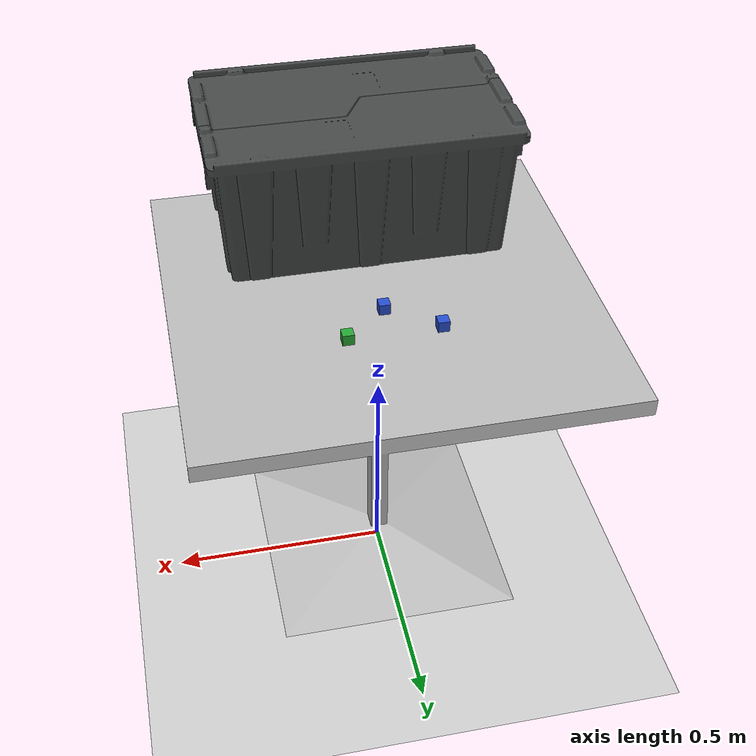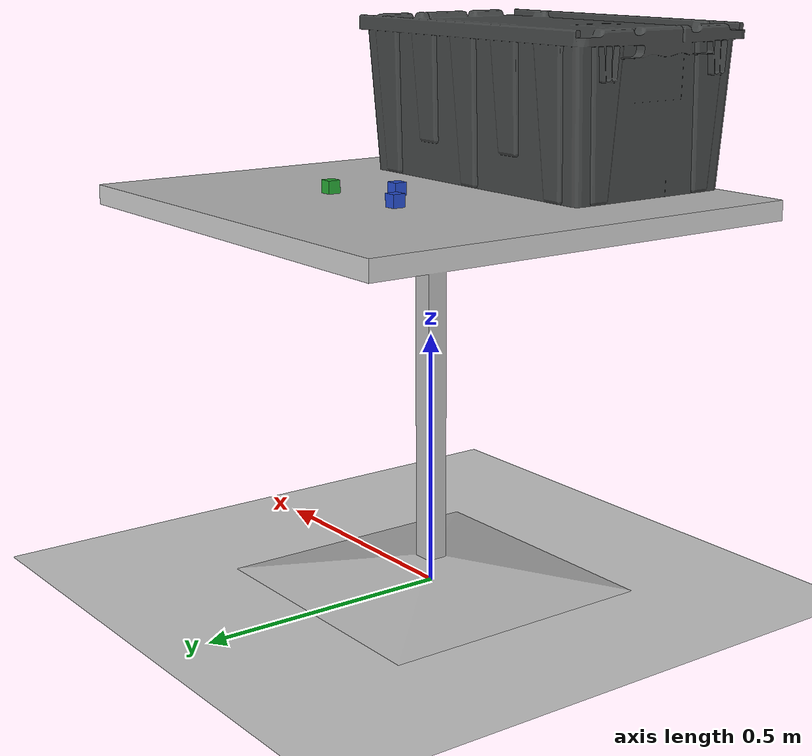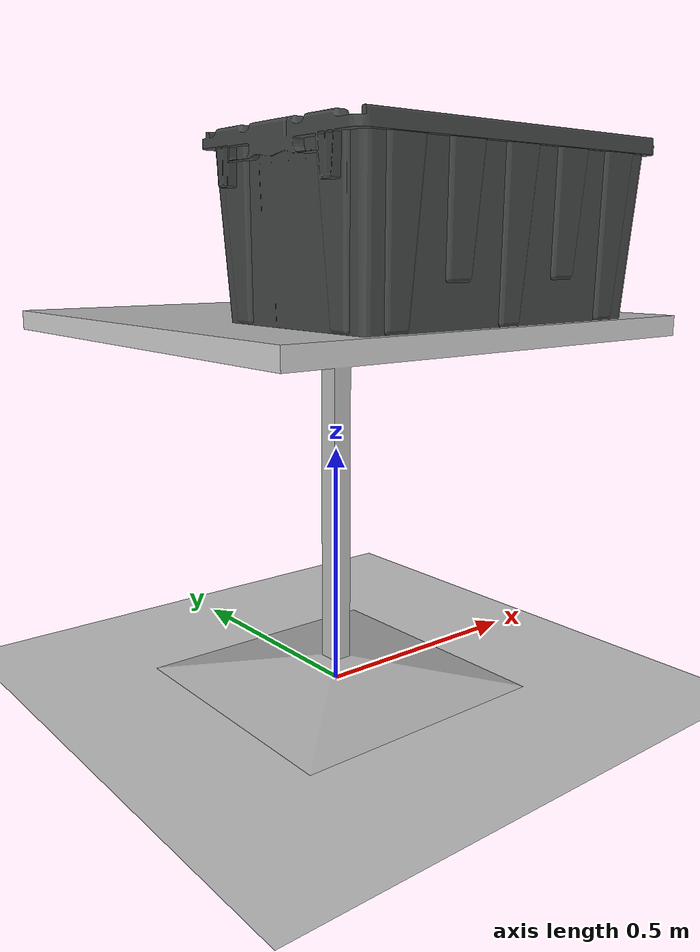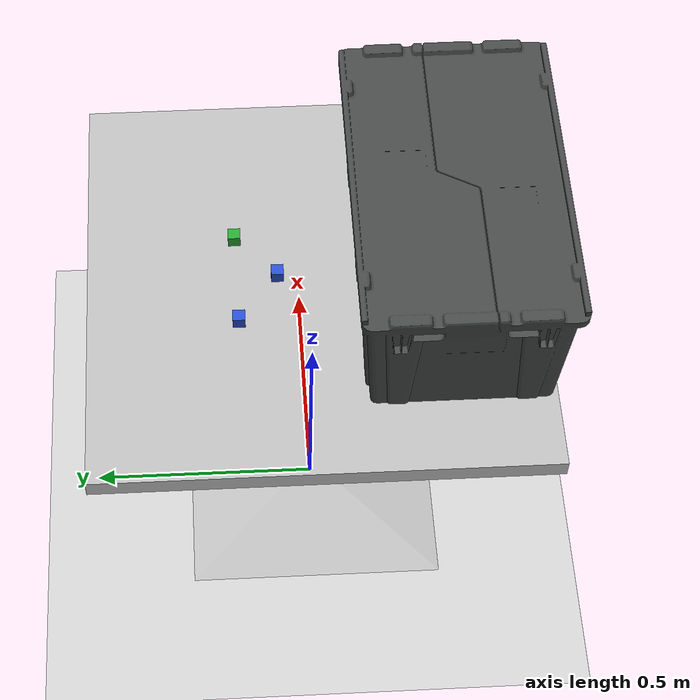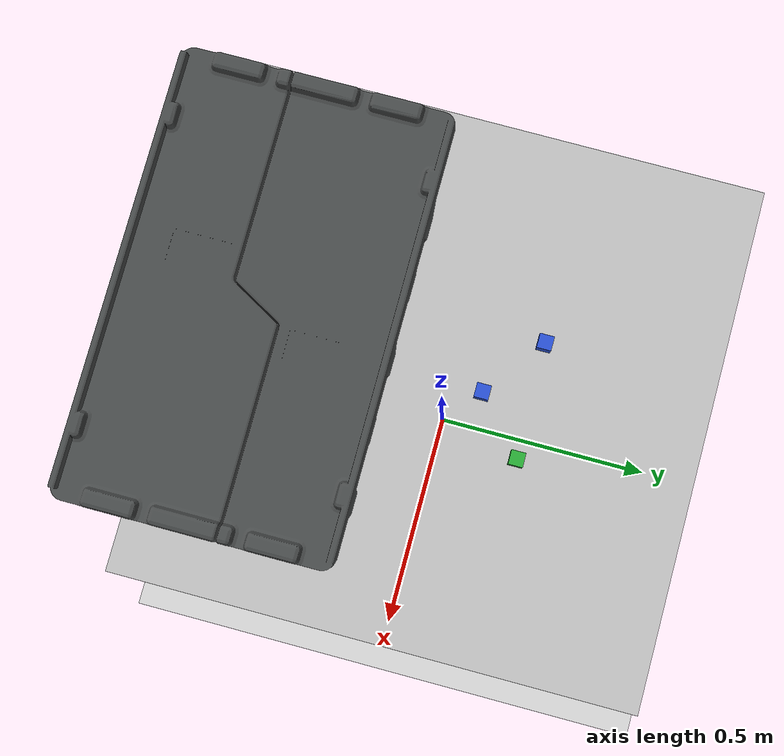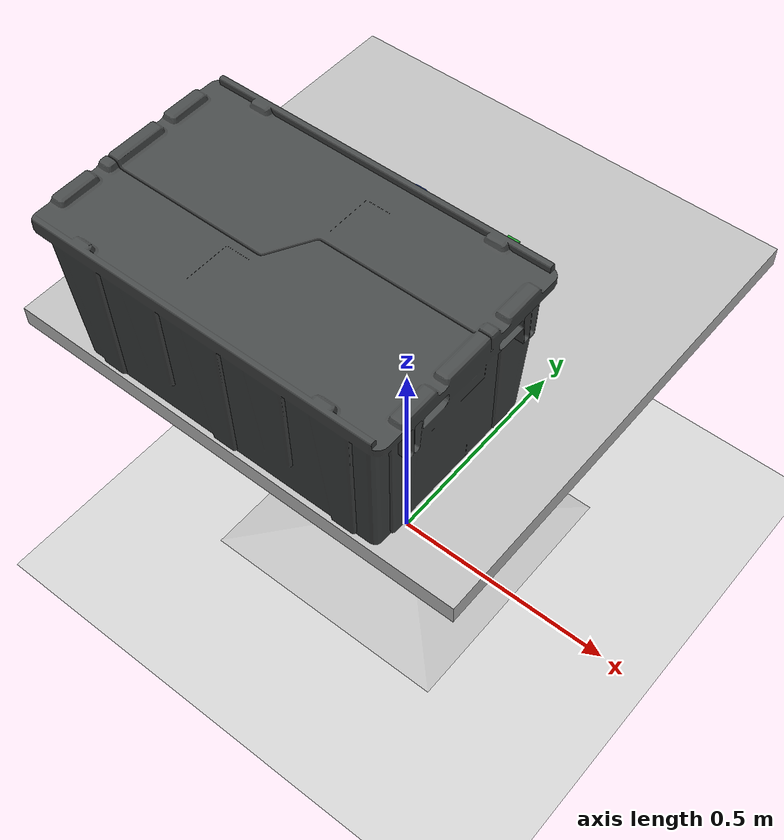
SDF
<sdf version="1.7">
 <world name="default">
  <scene>
   <sky><clouds><speed>12</speed></clouds></sky>
   <ambient>0.4 0.4 0.4 1</ambient>
   <background>0.7 0.7 0.7 1</background>
   <shadows>1</shadows>
  </scene>
  <light name="sun" type="directional">
   <pose>0 0 10 0 -0 0</pose>
   <diffuse>0.8 0.8 0.8 1</diffuse>
   <specular>0.2 0.2 0.2 1</specular>
   <attenuation>
    <range>1000</range>
    <constant>0.9</constant>
    <linear>0.01</linear>
    <quadratic>0.001</quadratic>
   </attenuation>
   <direction>-0.5 0.1 -0.9</direction>
   <spot><inner_angle>0</inner_angle><outer_angle>0</outer_angle><falloff>0</falloff></spot>
  </light>
  <model name="ground_plane">
   <static>1</static>
   <link name="link">
    <collision name="collision">
     <geometry><plane><normal>0 0 1</normal><size>100 100</size></plane></geometry>
     <surface><friction><ode><mu>100</mu><mu2>50</mu2></ode></friction></surface>
    </collision>
    <visual name="visual">
     <cast_shadows>0</cast_shadows>
     <geometry><plane><normal>0 0 1</normal><size>100 100</size></plane></geometry>
     <material>
      <script><uri>file://media/materials/scripts/gazebo.material</uri><name>Gazebo/Grey</name></script>
     </material>
    </visual>
   </link>
  </model>
  <gravity>0 0 -9.8</gravity>
  <magnetic_field>6e-06 2.3e-05 -4.2e-05</magnetic_field>
  <atmosphere type="adiabatic"/>
  <physics type="ode">
   <max_step_size>0.001</max_step_size>
   <real_time_factor>1</real_time_factor>
   <real_time_update_rate>1000</real_time_update_rate>
  </physics>
  <spherical_coordinates>
   <surface_model>EARTH_WGS84</surface_model>
   <latitude_deg>0</latitude_deg>
   <longitude_deg>0</longitude_deg>
   <elevation>0</elevation>
   <heading_deg>0</heading_deg>
  </spherical_coordinates>
  <model name="cafe_table">
   <static>1</static>
   <link name="link">
    <collision name="surface">
     <pose>0 0 0.755 0 -0 0</pose>
     <geometry><box><size>0.913 0.913 0.04</size></box></geometry>
    </collision>
    <collision name="column">
     <pose>0 0 0.37 0 -0 0</pose>
     <geometry><box><size>0.042 0.042 0.74</size></box></geometry>
    </collision>
    <collision name="base">
     <pose>0 0 0.02 0 -0 0</pose>
     <geometry><box><size>0.56 0.56 0.04</size></box></geometry>
    </collision>
    <visual name="visual">
     <geometry><mesh><uri>model://cafe_table/meshes/cafe_table.dae</uri></mesh></geometry>
    </visual>
   </link>
  </model>
  <model name="grey_tote">
   <link name="link">
    <inertial>
     <pose>0 0 0.14155 0 -0 0</pose>
     <mass>3.53802</mass>
     <inertia>
      <ixx>0.0688358</ixx>
      <ixy>0</ixy>
      <ixz>0</ixz>
      <iyy>0.139596</iyy>
      <iyz>0</iyz>
      <izz>0.155909</izz>
     </inertia>
    </inertial>
    <collision name="lid">
     <pose>0 0 0.28958 0 -0 0</pose>
     <geometry><box><size>0.67768 0.41298 0.01588</size></box></geometry>
    </collision>
    <collision name="lid_lip_1">
     <pose>0 0.20063 0.3048 0 -0 0</pose>
     <geometry><box><size>0.65068 0.0105 0.0127</size></box></geometry>
    </collision>
    <collision name="lid_lip_2">
     <pose>0 -0.20063 0.3048 0 -0 0</pose>
     <geometry><box><size>0.65068 0.0105 0.0127</size></box></geometry>
    </collision>
    <collision name="lid_lip_3">
     <pose>0.32585 0 0.3048 0 -0 0</pose>
     <geometry><box><size>0.02602 0.31202 0.0127</size></box></geometry>
    </collision>
    <collision name="lid_lip_4">
     <pose>-0.32585 0 0.3048 0 -0 0</pose>
     <geometry><box><size>0.02602 0.31202 0.0127</size></box></geometry>
    </collision>
    <collision name="side_wall_1">
     <pose>0 -0.18 0.14155 0.061147 -0 0</pose>
     <geometry><box><size>0.58404 0.02602 0.283099</size></box></geometry>
    </collision>
    <collision name="side_wall_2">
     <pose>0 0.18 0.14155 -0.061147 0 0</pose>
     <geometry><box><size>0.58404 0.02602 0.283099</size></box></geometry>
    </collision>
    <collision name="side_wall_3">
     <pose>0.305 0 0.14155 0 0.061147 0</pose>
     <geometry><box><size>0.02602 0.33046 0.283099</size></box></geometry>
    </collision>
    <collision name="side_wall_4">
     <pose>-0.305 0 0.14155 0 -0.061147 0</pose>
     <geometry><box><size>0.02602 0.33046 0.283099</size></box></geometry>
    </collision>
    <collision name="bottom">
     <pose>0 0 0.01 0 -0 0</pose>
     <geometry><box><size>0.58404 0.33046 0.02</size></box></geometry>
    </collision>
    <collision name="corner_1">
     <pose>0.30202 -0.175 0.14155 0.061147 0.061147 -0</pose>
     <geometry><cylinder><radius>0.01268</radius><length>0.283099</length></cylinder></geometry>
    </collision>
    <collision name="corner_2">
     <pose>-0.30202 -0.175 0.14155 0.061147 -0.061147 0</pose>
     <geometry><cylinder><radius>0.01268</radius><length>0.283099</length></cylinder></geometry>
    </collision>
    <collision name="corner_3">
     <pose>-0.30202 0.175 0.14155 -0.061147 -0.061147 -0</pose>
     <geometry><cylinder><radius>0.01268</radius><length>0.283099</length></cylinder></geometry>
    </collision>
    <collision name="corner_4">
     <pose>0.30202 0.175 0.14155 -0.061147 0.061147 0</pose>
     <geometry><cylinder><radius>0.01268</radius><length>0.283099</length></cylinder></geometry>
    </collision>
    <visual name="visual"><geometry><mesh><uri>model://grey_tote/meshes/tote.dae</uri></mesh></geometry></visual>
   </link>
   <pose>-1e-06 -0.269988 0.775561 -1.5e-05 8e-06 -2.3e-05</pose>
  </model>
  <light name="user_point_light_0" type="point">
   <pose>-0.034186 -0.622255 1 0 -0 0</pose>
   <diffuse>0.5 0.5 0.5 1</diffuse>
   <specular>0.1 0.1 0.1 1</specular>
   <attenuation>
    <range>20</range>
    <constant>0.5</constant>
    <linear>0.01</linear>
    <quadratic>0.001</quadratic>
   </attenuation>
   <cast_shadows>0</cast_shadows>
   <direction>0 0 -1</direction>
   <spot><inner_angle>0</inner_angle><outer_angle>0</outer_angle><falloff>0</falloff></spot>
  </light>
  <model name="green_cube">
   <link name="link">
    <inertial>
     <mass>0.03</mass>
     <inertia>
      <ixx>0.00066667</ixx>
      <ixy>0</ixy>
      <ixz>0</ixz>
      <iyy>0.00066667</iyy>
      <iyz>0</iyz>
      <izz>0.00066667</izz>
     </inertia>
    </inertial>
    <visual name="visual">
     <geometry><box><size>0.025 0.025 0.025</size></box></geometry>
     <material>
      <script><name>Gazebo/Green</name><uri>file://media/materials/scripts/gazebo.material</uri></script>
     </material>
    </visual>
    <collision name="collision">
     <geometry><box><size>0.025 0.025 0.025</size></box></geometry>
     <surface>
      <friction>
       <ode><mu>5</mu><mu2>5</mu2><fdir1>0 0 0</fdir1><slip1>0</slip1><slip2>0</slip2></ode>
       <torsional>
        <coefficient>1</coefficient>
        <patch_radius>0</patch_radius>
        <surface_radius>0</surface_radius>
        <use_patch_radius>1</use_patch_radius>
        <ode><slip>0</slip></ode>
       </torsional>
      </friction>
      <bounce><restitution_coefficient>0</restitution_coefficient><threshold>1e+06</threshold></bounce>
      <contact>
       <collide_without_contact>0</collide_without_contact>
       <collide_without_contact_bitmask>1</collide_without_contact_bitmask>
       <collide_bitmask>1</collide_bitmask>
       <ode>
        <soft_cfm>0</soft_cfm>
        <soft_erp>0.2</soft_erp>
        <kp>1e+13</kp>
        <kd>1</kd>
        <max_vel>0.01</max_vel>
        <min_depth>0.001</min_depth>
       </ode>
       <bullet>
        <split_impulse>1</split_impulse>
        <split_impulse_penetration_threshold>-0.01</split_impulse_penetration_threshold>
        <soft_cfm>0</soft_cfm>
        <soft_erp>0.2</soft_erp>
        <kp>1e+13</kp>
        <kd>1</kd>
       </bullet>
      </contact>
     </surface>
    </collision>
   </link>
   <static>0</static>
   <pose>0.10 0.158 0.7875 -1.3e-05 7e-06 -0.000122</pose>
  </model>
  <model name="blue_cube1">
   <link name="link">
    <inertial>
     <mass>0.03</mass>
     <inertia>
      <ixx>0.00066667</ixx>
      <ixy>0</ixy>
      <ixz>0</ixz>
      <iyy>0.00066667</iyy>
      <iyz>0</iyz>
      <izz>0.00066667</izz>
     </inertia>
    </inertial>
    <visual name="visual">
     <geometry><box><size>0.025 0.025 0.025</size></box></geometry>
     <material>
      <script><name>Gazebo/Blue</name><uri>file://media/materials/scripts/gazebo.material</uri></script>
     </material>
    </visual>
    <collision name="collision">
     <geometry><box><size>0.025 0.025 0.025</size></box></geometry>
     <surface>
      <friction>
       <ode><mu>5</mu><mu2>5</mu2><fdir1>0 0 0</fdir1><slip1>0</slip1><slip2>0</slip2></ode>
       <torsional>
        <coefficient>1</coefficient>
        <patch_radius>0</patch_radius>
        <surface_radius>0</surface_radius>
        <use_patch_radius>1</use_patch_radius>
        <ode><slip>0</slip></ode>
       </torsional>
      </friction>
      <bounce><restitution_coefficient>0</restitution_coefficient><threshold>1e+06</threshold></bounce>
      <contact>
       <collide_without_contact>0</collide_without_contact>
       <collide_without_contact_bitmask>1</collide_without_contact_bitmask>
       <collide_bitmask>1</collide_bitmask>
       <ode>
        <soft_cfm>0</soft_cfm>
        <soft_erp>0.2</soft_erp>
        <kp>1e+13</kp>
        <kd>1</kd>
        <max_vel>0.01</max_vel>
        <min_depth>0.001</min_depth>
       </ode>
       <bullet>
        <split_impulse>1</split_impulse>
        <split_impulse_penetration_threshold>-0.01</split_impulse_penetration_threshold>
        <soft_cfm>0</soft_cfm>
        <soft_erp>0.2</soft_erp>
        <kp>1e+13</kp>
        <kd>1</kd>
       </bullet>
      </contact>
     </surface>
    </collision>
   </link>
   <static>0</static>
   <pose>0.0057 0.074 0.7875 -1.3e-05 7e-06 -0.000122</pose>
  </model>
  <model name="blue_cube2">
   <link name="link">
    <inertial>
     <mass>0.03</mass>
     <inertia>
      <ixx>0.00066667</ixx>
      <ixy>0</ixy>
      <ixz>0</ixz>
      <iyy>0.00066667</iyy>
      <iyz>0</iyz>
      <izz>0.00066667</izz>
     </inertia>
    </inertial>
    <visual name="visual">
     <geometry><box><size>0.025 0.025 0.025</size></box></geometry>
     <material>
      <script><name>Gazebo/Blue</name><uri>file://media/materials/scripts/gazebo.material</uri></script>
     </material>
    </visual>
    <collision name="collision">
     <geometry><box><size>0.025 0.025 0.025</size></box></geometry>
     <surface>
      <friction>
       <ode><mu>5</mu><mu2>5</mu2><fdir1>0 0 0</fdir1><slip1>0</slip1><slip2>0</slip2></ode>
       <torsional>
        <coefficient>1</coefficient>
        <patch_radius>0</patch_radius>
        <surface_radius>0</surface_radius>
        <use_patch_radius>1</use_patch_radius>
        <ode><slip>0</slip></ode>
       </torsional>
      </friction>
      <bounce><restitution_coefficient>0</restitution_coefficient><threshold>1e+06</threshold></bounce>
      <contact>
       <collide_without_contact>0</collide_without_contact>
       <collide_without_contact_bitmask>1</collide_without_contact_bitmask>
       <collide_bitmask>1</collide_bitmask>
       <ode>
        <soft_cfm>0</soft_cfm>
        <soft_erp>0.2</soft_erp>
        <kp>1e+13</kp>
        <kd>1</kd>
        <max_vel>0.01</max_vel>
        <min_depth>0.001</min_depth>
       </ode>
       <bullet>
        <split_impulse>1</split_impulse>
        <split_impulse_penetration_threshold>-0.01</split_impulse_penetration_threshold>
        <soft_cfm>0</soft_cfm>
        <soft_erp>0.2</soft_erp>
        <kp>1e+13</kp>
        <kd>1</kd>
       </bullet>
      </contact>
     </surface>
    </collision>
   </link>
   <static>0</static>
   <pose>-0.102 0.155 0.7875 -1.3e-05 7e-06 -0.000122</pose>
  </model>
 </world>
</sdf>
